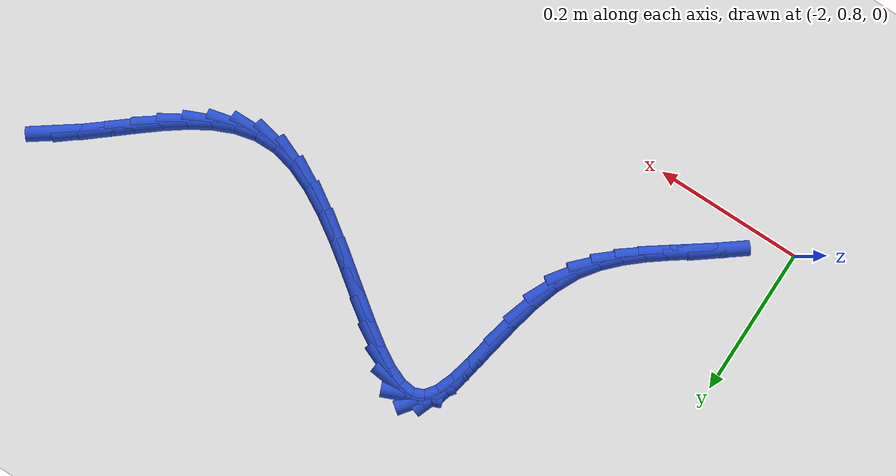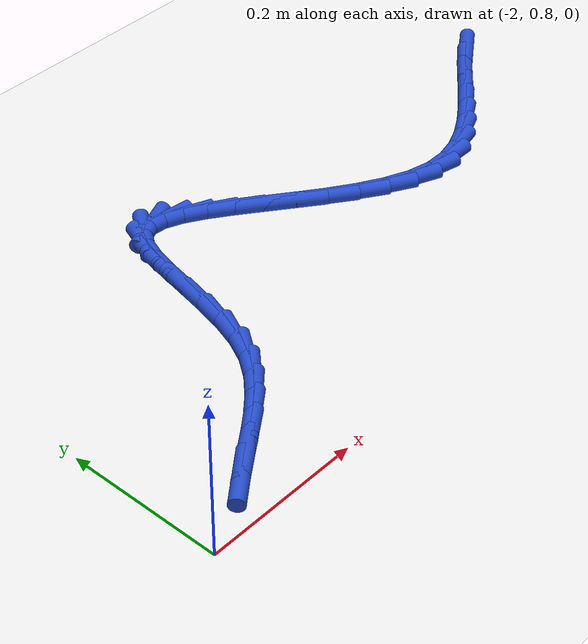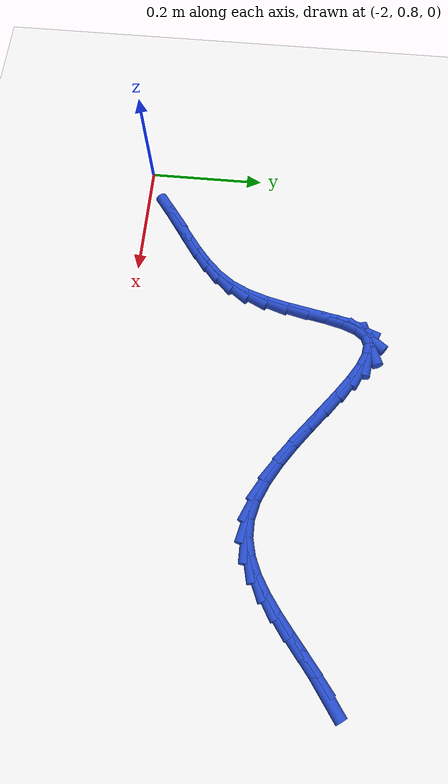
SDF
<sdf version="1.6">
 <world name="default">
  <model name="ground_plane">
   <static>1</static>
   <link name="link">
    <collision name="collision">
     <geometry><plane><normal>0 0 1</normal><size>100 100</size></plane></geometry>
     <surface><friction><ode><mu>100</mu><mu2>50</mu2></ode></friction></surface>
    </collision>
    <visual name="visual">
     <cast_shadows>0</cast_shadows>
     <geometry><plane><normal>0 0 1</normal><size>100 100</size></plane></geometry>
     <material>
      <script><uri>file://media/materials/scripts/gazebo.material</uri><name>Gazebo/WhiteGlow</name></script>
     </material>
    </visual>
   </link>
  </model>
  <model name="line">
   <link name="link_64">
    <pose>-1.123295445762803 1.1739018525176905 0.01 0 1.57 0.6172434148043432</pose>
    <collision name="collision">
     <geometry><cylinder><radius>0.01</radius><length>0.08</length></cylinder></geometry>
    </collision>
    <visual name="visual">
     <material>
      <script><name>Gazebo/Blue</name><uri>file://media/materials/scripts/gazebo.material</uri></script>
     </material>
     <geometry><cylinder><radius>0.01</radius><length>0.08</length></cylinder></geometry>
    </visual>
   </link>
   <link name="link_65">
    <pose>-1.1502586530471257 1.1547645638969322 0.01 0 1.57 0.6667386898226974</pose>
    <collision name="collision">
     <geometry><cylinder><radius>0.01</radius><length>0.08</length></cylinder></geometry>
    </collision>
    <visual name="visual">
     <material>
      <script><name>Gazebo/Blue</name><uri>file://media/materials/scripts/gazebo.material</uri></script>
     </material>
     <geometry><cylinder><radius>0.01</radius><length>0.08</length></cylinder></geometry>
    </visual>
   </link>
   <link name="link_66">
    <pose>-1.1768022225973038 1.1338758494010648 0.01 0 1.57 0.6837297910393486</pose>
    <collision name="collision">
     <geometry><cylinder><radius>0.01</radius><length>0.08</length></cylinder></geometry>
    </collision>
    <visual name="visual">
     <material>
      <script><name>Gazebo/Blue</name><uri>file://media/materials/scripts/gazebo.material</uri></script>
     </material>
     <geometry><cylinder><radius>0.01</radius><length>0.08</length></cylinder></geometry>
    </visual>
   </link>
   <link name="link_67">
    <pose>-1.2031430591692867 1.112412047918144 0.01 0 1.57 0.6695962123599518</pose>
    <collision name="collision">
     <geometry><cylinder><radius>0.01</radius><length>0.08</length></cylinder></geometry>
    </collision>
    <visual name="visual">
     <material>
      <script><name>Gazebo/Blue</name><uri>file://media/materials/scripts/gazebo.material</uri></script>
     </material>
     <geometry><cylinder><radius>0.01</radius><length>0.08</length></cylinder></geometry>
    </visual>
   </link>
   <link name="link_68">
    <pose>-1.2294980675190232 1.0915494983362228 0.01 0 1.57 0.6226090642263317</pose>
    <collision name="collision">
     <geometry><cylinder><radius>0.01</radius><length>0.08</length></cylinder></geometry>
    </collision>
    <visual name="visual">
     <material>
      <script><name>Gazebo/Blue</name><uri>file://media/materials/scripts/gazebo.material</uri></script>
     </material>
     <geometry><cylinder><radius>0.01</radius><length>0.08</length></cylinder></geometry>
    </visual>
   </link>
   <link name="link_69">
    <pose>-1.2560841524024635 1.0724645395433572 0.01 0 1.57 0.5379840909663278</pose>
    <collision name="collision">
     <geometry><cylinder><radius>0.01</radius><length>0.08</length></cylinder></geometry>
    </collision>
    <visual name="visual">
     <material>
      <script><name>Gazebo/Blue</name><uri>file://media/materials/scripts/gazebo.material</uri></script>
     </material>
     <geometry><cylinder><radius>0.01</radius><length>0.08</length></cylinder></geometry>
    </visual>
   </link>
   <link name="link_70">
    <pose>-1.2831182185755559 1.0563335104276004 0.01 0 1.57 0.4088434280261329</pose>
    <collision name="collision">
     <geometry><cylinder><radius>0.01</radius><length>0.08</length></cylinder></geometry>
    </collision>
    <visual name="visual">
     <material>
      <script><name>Gazebo/Blue</name><uri>file://media/materials/scripts/gazebo.material</uri></script>
     </material>
     <geometry><cylinder><radius>0.01</radius><length>0.08</length></cylinder></geometry>
    </visual>
   </link>
   <link name="link_71">
    <pose>-1.3108171707942502 1.044332749877008 0.01 0 1.57 0.2300717068614746</pose>
    <collision name="collision">
     <geometry><cylinder><radius>0.01</radius><length>0.08</length></cylinder></geometry>
    </collision>
    <visual name="visual">
     <material>
      <script><name>Gazebo/Blue</name><uri>file://media/materials/scripts/gazebo.material</uri></script>
     </material>
     <geometry><cylinder><radius>0.01</radius><length>0.08</length></cylinder></geometry>
    </visual>
   </link>
   <link name="link_72">
    <pose>-1.3393979138144954 1.0376385967796342 0.01 0 1.57 0.007116145084728164</pose>
    <collision name="collision">
     <geometry><cylinder><radius>0.01</radius><length>0.08</length></cylinder></geometry>
    </collision>
    <visual name="visual">
     <material>
      <script><name>Gazebo/Blue</name><uri>file://media/materials/scripts/gazebo.material</uri></script>
     </material>
     <geometry><cylinder><radius>0.01</radius><length>0.08</length></cylinder></geometry>
    </visual>
   </link>
   <link name="link_73">
    <pose>-1.3690773523922417 1.0374273900235333 0.01 0 1.57 -0.22430684001839685</pose>
    <collision name="collision">
     <geometry><cylinder><radius>0.01</radius><length>0.08</length></cylinder></geometry>
    </collision>
    <visual name="visual">
     <material>
      <script><name>Gazebo/Blue</name><uri>file://media/materials/scripts/gazebo.material</uri></script>
     </material>
     <geometry><cylinder><radius>0.01</radius><length>0.08</length></cylinder></geometry>
    </visual>
   </link>
   <link name="link_74">
    <pose>-1.3999722618208565 1.0444759405049506 0.01 0 1.57 -0.3965158766833829</pose>
    <collision name="collision">
     <geometry><cylinder><radius>0.01</radius><length>0.08</length></cylinder></geometry>
    </collision>
    <visual name="visual">
     <material>
      <script><name>Gazebo/Blue</name><uri>file://media/materials/scripts/gazebo.material</uri></script>
     </material>
     <geometry><cylinder><radius>0.01</radius><length>0.08</length></cylinder></geometry>
    </visual>
   </link>
   <link name="link_75">
    <pose>-1.431753696842944 1.0577825832153878 0.01 0 1.57 -0.5111488755094384</pose>
    <collision name="collision">
     <geometry><cylinder><radius>0.01</radius><length>0.08</length></cylinder></geometry>
    </collision>
    <visual name="visual">
     <material>
      <script><name>Gazebo/Blue</name><uri>file://media/materials/scripts/gazebo.material</uri></script>
     </material>
     <geometry><cylinder><radius>0.01</radius><length>0.08</length></cylinder></geometry>
    </visual>
   </link>
   <link name="link_76">
    <pose>-1.4639687344368904 1.0758509677072075 0.01 0 1.57 -0.5852008580035079</pose>
    <collision name="collision">
     <geometry><cylinder><radius>0.01</radius><length>0.08</length></cylinder></geometry>
    </collision>
    <visual name="visual">
     <material>
      <script><name>Gazebo/Blue</name><uri>file://media/materials/scripts/gazebo.material</uri></script>
     </material>
     <geometry><cylinder><radius>0.01</radius><length>0.08</length></cylinder></geometry>
    </visual>
   </link>
   <link name="link_77">
    <pose>-1.4961644465363328 1.0971847234036554 0.01 0 1.57 -0.6294382197048156</pose>
    <collision name="collision">
     <geometry><cylinder><radius>0.01</radius><length>0.08</length></cylinder></geometry>
    </collision>
    <visual name="visual">
     <material>
      <script><name>Gazebo/Blue</name><uri>file://media/materials/scripts/gazebo.material</uri></script>
     </material>
     <geometry><cylinder><radius>0.01</radius><length>0.08</length></cylinder></geometry>
    </visual>
   </link>
   <link name="link_78">
    <pose>-1.5278879050749108 1.12028747972798 0.01 0 1.57 -0.6492258495094699</pose>
    <collision name="collision">
     <geometry><cylinder><radius>0.01</radius><length>0.08</length></cylinder></geometry>
    </collision>
    <visual name="visual">
     <material>
      <script><name>Gazebo/Blue</name><uri>file://media/materials/scripts/gazebo.material</uri></script>
     </material>
     <geometry><cylinder><radius>0.01</radius><length>0.08</length></cylinder></geometry>
    </visual>
   </link>
   <link name="link_79">
    <pose>-1.5586861819862612 1.1436628661034258 0.01 0 1.57 -0.6453806004635387</pose>
    <collision name="collision">
     <geometry><cylinder><radius>0.01</radius><length>0.08</length></cylinder></geometry>
    </collision>
    <visual name="visual">
     <material>
      <script><name>Gazebo/Blue</name><uri>file://media/materials/scripts/gazebo.material</uri></script>
     </material>
     <geometry><cylinder><radius>0.01</radius><length>0.08</length></cylinder></geometry>
    </visual>
   </link>
   <link name="link_80">
    <pose>-1.5881063492040233 1.165814511953241 0.01 0 1.57 -0.6136184216072595</pose>
    <collision name="collision">
     <geometry><cylinder><radius>0.01</radius><length>0.08</length></cylinder></geometry>
    </collision>
    <visual name="visual">
     <material>
      <script><name>Gazebo/Blue</name><uri>file://media/materials/scripts/gazebo.material</uri></script>
     </material>
     <geometry><cylinder><radius>0.01</radius><length>0.08</length></cylinder></geometry>
    </visual>
   </link>
   <link name="link_81">
    <pose>-1.6156954786618347 1.1852460467006714 0.01 0 1.57 -0.5413474987262384</pose>
    <collision name="collision">
     <geometry><cylinder><radius>0.01</radius><length>0.08</length></cylinder></geometry>
    </collision>
    <visual name="visual">
     <material>
      <script><name>Gazebo/Blue</name><uri>file://media/materials/scripts/gazebo.material</uri></script>
     </material>
     <geometry><cylinder><radius>0.01</radius><length>0.08</length></cylinder></geometry>
    </visual>
   </link>
   <link name="link_82">
    <pose>-1.641000642293335 1.2004610997689646 0.01 0 1.57 -0.3985138435502189</pose>
    <collision name="collision">
     <geometry><cylinder><radius>0.01</radius><length>0.08</length></cylinder></geometry>
    </collision>
    <visual name="visual">
     <material>
      <script><name>Gazebo/Blue</name><uri>file://media/materials/scripts/gazebo.material</uri></script>
     </material>
     <geometry><cylinder><radius>0.01</radius><length>0.08</length></cylinder></geometry>
    </visual>
   </link>
   <link name="link_83">
    <pose>-1.6635689120321606 1.209963300581366 0.01 0 1.57 -0.11777855581180918</pose>
    <collision name="collision">
     <geometry><cylinder><radius>0.01</radius><length>0.08</length></cylinder></geometry>
    </collision>
    <visual name="visual">
     <material>
      <script><name>Gazebo/Blue</name><uri>file://media/materials/scripts/gazebo.material</uri></script>
     </material>
     <geometry><cylinder><radius>0.01</radius><length>0.08</length></cylinder></geometry>
    </visual>
   </link>
   <link name="link_84">
    <pose>-1.68294735981195 1.2122562785611224 0.01 0 1.57 0.386941628030045</pose>
    <collision name="collision">
     <geometry><cylinder><radius>0.01</radius><length>0.08</length></cylinder></geometry>
    </collision>
    <visual name="visual">
     <material>
      <script><name>Gazebo/Blue</name><uri>file://media/materials/scripts/gazebo.material</uri></script>
     </material>
     <geometry><cylinder><radius>0.01</radius><length>0.08</length></cylinder></geometry>
    </visual>
   </link>
   <link name="link_85">
    <pose>-1.6986832703432206 1.2058441427089344 0.01 0 1.57 0.9240433186413443</pose>
    <collision name="collision">
     <geometry><cylinder><radius>0.01</radius><length>0.08</length></cylinder></geometry>
    </collision>
    <visual name="visual">
     <material>
      <script><name>Gazebo/Blue</name><uri>file://media/materials/scripts/gazebo.material</uri></script>
     </material>
     <geometry><cylinder><radius>0.01</radius><length>0.08</length></cylinder></geometry>
    </visual>
   </link>
   <link name="link_86">
    <pose>-1.7106584395126985 1.1899849562121472 0.01 0 1.57 1.2048630355740826</pose>
    <collision name="collision">
     <geometry><cylinder><radius>0.01</radius><length>0.08</length></cylinder></geometry>
    </collision>
    <visual name="visual">
     <material>
      <script><name>Gazebo/Blue</name><uri>file://media/materials/scripts/gazebo.material</uri></script>
     </material>
     <geometry><cylinder><radius>0.01</radius><length>0.08</length></cylinder></geometry>
    </visual>
   </link>
   <link name="link_87">
    <pose>-1.719766227750384 1.166216745908667 0.01 0 1.57 1.3290907406611225</pose>
    <collision name="collision">
     <geometry><cylinder><radius>0.01</radius><length>0.08</length></cylinder></geometry>
    </collision>
    <visual name="visual">
     <material>
      <script><name>Gazebo/Blue</name><uri>file://media/materials/scripts/gazebo.material</uri></script>
     </material>
     <geometry><cylinder><radius>0.01</radius><length>0.08</length></cylinder></geometry>
    </visual>
   </link>
   <link name="link_88">
    <pose>-1.7270904672183143 1.1365068425581233 0.01 0 1.57 1.3766093514737472</pose>
    <collision name="collision">
     <geometry><cylinder><radius>0.01</radius><length>0.08</length></cylinder></geometry>
    </collision>
    <visual name="visual">
     <material>
      <script><name>Gazebo/Blue</name><uri>file://media/materials/scripts/gazebo.material</uri></script>
     </material>
     <geometry><cylinder><radius>0.01</radius><length>0.08</length></cylinder></geometry>
    </visual>
   </link>
   <link name="link_89">
    <pose>-1.7337149900785294 1.1028225769201456 0.01 0 1.57 1.3768952377123298</pose>
    <collision name="collision">
     <geometry><cylinder><radius>0.01</radius><length>0.08</length></cylinder></geometry>
    </collision>
    <visual name="visual">
     <material>
      <script><name>Gazebo/Blue</name><uri>file://media/materials/scripts/gazebo.material</uri></script>
     </material>
     <geometry><cylinder><radius>0.01</radius><length>0.08</length></cylinder></geometry>
    </visual>
   </link>
   <link name="link_90">
    <pose>-1.7407236284930658 1.067131279754362 0.01 0 1.57 1.337868906155137</pose>
    <collision name="collision">
     <geometry><cylinder><radius>0.01</radius><length>0.08</length></cylinder></geometry>
    </collision>
    <visual name="visual">
     <material>
      <script><name>Gazebo/Blue</name><uri>file://media/materials/scripts/gazebo.material</uri></script>
     </material>
     <geometry><cylinder><radius>0.01</radius><length>0.08</length></cylinder></geometry>
    </visual>
   </link>
   <link name="link_91">
    <pose>-1.7492002146239625 1.0314002818204013 0.01 0 1.57 1.2554338008507726</pose>
    <collision name="collision">
     <geometry><cylinder><radius>0.01</radius><length>0.08</length></cylinder></geometry>
    </collision>
    <visual name="visual">
     <material>
      <script><name>Gazebo/Blue</name><uri>file://media/materials/scripts/gazebo.material</uri></script>
     </material>
     <geometry><cylinder><radius>0.01</radius><length>0.08</length></cylinder></geometry>
    </visual>
   </link>
   <link name="link_92">
    <pose>-1.7602285806332563 0.9975969138778935 0.01 0 1.57 1.1154133337335483</pose>
    <collision name="collision">
     <geometry><cylinder><radius>0.01</radius><length>0.08</length></cylinder></geometry>
    </collision>
    <visual name="visual">
     <material>
      <script><name>Gazebo/Blue</name><uri>file://media/materials/scripts/gazebo.material</uri></script>
     </material>
     <geometry><cylinder><radius>0.01</radius><length>0.08</length></cylinder></geometry>
    </visual>
   </link>
   <link name="link_93">
    <pose>-1.7748822881112436 0.9676737710726196 0.01 0 1.57 0.9374667228821899</pose>
    <collision name="collision">
     <geometry><cylinder><radius>0.01</radius><length>0.08</length></cylinder></geometry>
    </collision>
    <visual name="visual">
     <material>
      <script><name>Gazebo/Blue</name><uri>file://media/materials/scripts/gazebo.material</uri></script>
     </material>
     <geometry><cylinder><radius>0.01</radius><length>0.08</length></cylinder></geometry>
    </visual>
   </link>
   <link name="link_94">
    <pose>-1.7934241315190247 0.9424202074343557 0.01 0 1.57 0.796301426592829</pose>
    <collision name="collision">
     <geometry><cylinder><radius>0.01</radius><length>0.08</length></cylinder></geometry>
    </collision>
    <visual name="visual">
     <material>
      <script><name>Gazebo/Blue</name><uri>file://media/materials/scripts/gazebo.material</uri></script>
     </material>
     <geometry><cylinder><radius>0.01</radius><length>0.08</length></cylinder></geometry>
    </visual>
   </link>
   <link name="link_95">
    <pose>-1.814733712381798 0.9206407973443069 0.01 0 1.57 0.7042346489469326</pose>
    <collision name="collision">
     <geometry><cylinder><radius>0.01</radius><length>0.08</length></cylinder></geometry>
    </collision>
    <visual name="visual">
     <material>
      <script><name>Gazebo/Blue</name><uri>file://media/materials/scripts/gazebo.material</uri></script>
     </material>
     <geometry><cylinder><radius>0.01</radius><length>0.08</length></cylinder></geometry>
    </visual>
   </link>
   <link name="link_96">
    <pose>-1.8377633347335836 0.901075906698904 0.01 0 1.57 0.6449392495128724</pose>
    <collision name="collision">
     <geometry><cylinder><radius>0.01</radius><length>0.08</length></cylinder></geometry>
    </collision>
    <visual name="visual">
     <material>
      <script><name>Gazebo/Blue</name><uri>file://media/materials/scripts/gazebo.material</uri></script>
     </material>
     <geometry><cylinder><radius>0.01</radius><length>0.08</length></cylinder></geometry>
    </visual>
   </link>
   <link name="link_97">
    <pose>-1.8620321776248234 0.8828196812157174 0.01 0 1.57 0.6162499649496059</pose>
    <collision name="collision">
     <geometry><cylinder><radius>0.01</radius><length>0.08</length></cylinder></geometry>
    </collision>
    <visual name="visual">
     <material>
      <script><name>Gazebo/Blue</name><uri>file://media/materials/scripts/gazebo.material</uri></script>
     </material>
     <geometry><cylinder><radius>0.01</radius><length>0.08</length></cylinder></geometry>
    </visual>
   </link>
   <link name="link_98">
    <pose>-1.887155153072064 0.8650260123951531 0.01 0 1.57 0.6175847704163222</pose>
    <collision name="collision">
     <geometry><cylinder><radius>0.01</radius><length>0.08</length></cylinder></geometry>
    </collision>
    <visual name="visual">
     <material>
      <script><name>Gazebo/Blue</name><uri>file://media/materials/scripts/gazebo.material</uri></script>
     </material>
     <geometry><cylinder><radius>0.01</radius><length>0.08</length></cylinder></geometry>
    </visual>
   </link>
   <link name="link_99">
    <pose>-1.9127471730918542 0.8468487917376176 0.01 0 1.57 0.6472270249278427</pose>
    <collision name="collision">
     <geometry><cylinder><radius>0.01</radius><length>0.08</length></cylinder></geometry>
    </collision>
    <visual name="visual">
     <material>
      <script><name>Gazebo/Blue</name><uri>file://media/materials/scripts/gazebo.material</uri></script>
     </material>
     <geometry><cylinder><radius>0.01</radius><length>0.08</length></cylinder></geometry>
    </visual>
   </link>
  </model>
 </world>
</sdf>
